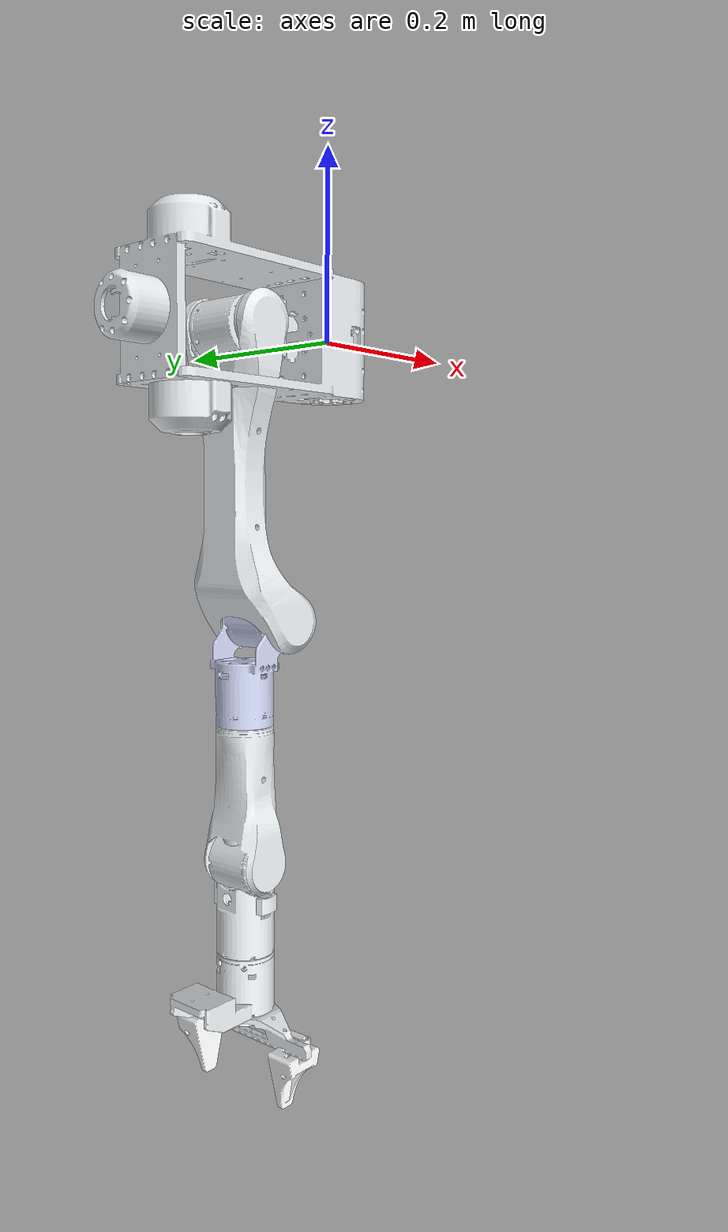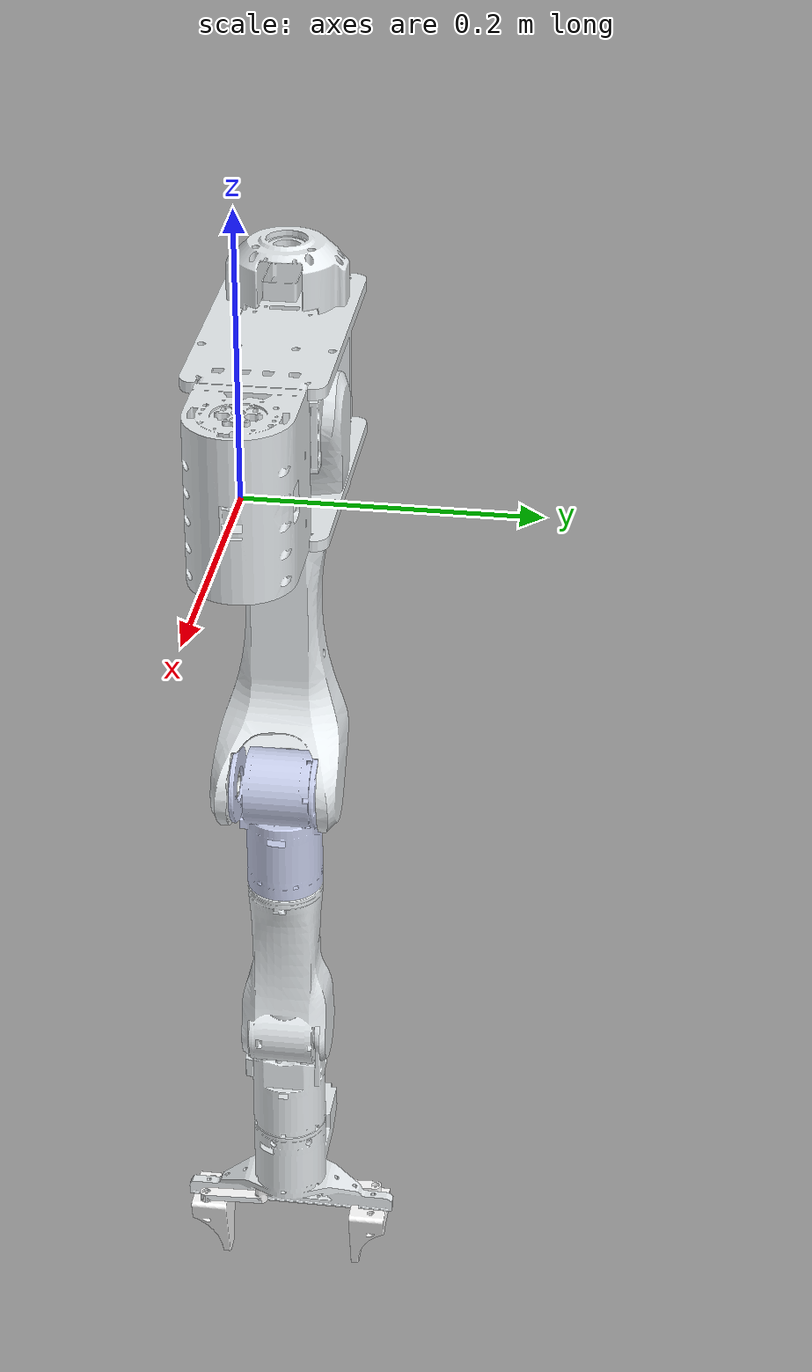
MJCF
<mujoco model="alicia_m_v1_1_vertical">
  <compiler angle="radian" meshdir="../../meshes/Alicia_M_v1_1/vertical/"/>

  <asset>
    <mesh name="base_link" content_type="model/stl" file="base_link.STL"/>
    <mesh name="Link1" content_type="model/stl" file="Link1.STL"/>
    <mesh name="Link2" content_type="model/stl" file="Link2.STL"/>
    <mesh name="Link3" content_type="model/stl" file="Link3.STL"/>
    <mesh name="Link4" content_type="model/stl" file="Link4.STL"/>
    <mesh name="Link5" content_type="model/stl" file="Link5.STL"/>
    <mesh name="Link6" content_type="model/stl" file="Link6.STL"/>
    <mesh name="grasp_base" content_type="model/stl" file="grasp_base.STL"/>
    <mesh name="Link7" content_type="model/stl" file="Link7.STL"/>
    <mesh name="Link8" content_type="model/stl" file="Link8.STL"/>
  </asset>

  <worldbody>
    <body name="robot_base" pos="0 0 0" quat="0.5 -0.5 -0.5 0.5">
      <geom type="mesh" contype="0" conaffinity="0" group="1" density="0" rgba="0.898039 0.917647 0.929412 1" mesh="base_link"/>
      <geom type="mesh" rgba="0.898039 0.917647 0.929412 1" mesh="base_link"/>
      <body name="Link1" pos="0 0 0.08325" quat="0.0 0 0 -1">
      <inertial pos="-0.00526343 -0.000784868 0.0400391" quat="0.712184 0.701961 -0.000872456 -0.00668323" mass="0.2378" diaginertia="0.000106558 9.72453e-05 8.49999e-05"/>
      <joint name="joint1" pos="0 0 0" axis="0 0 1" range="-2.7475 2.7475" actuatorfrcrange="-5 5"/>
      <geom type="mesh" contype="0" conaffinity="0" group="1" density="0" rgba="0.898039 0.917647 0.929412 1" mesh="Link1"/>
      <geom type="mesh" rgba="0.898039 0.917647 0.929412 1" mesh="Link1"/>
      <body name="Link2" pos="0 0 0.0505" quat="0.5 0.5 -0.5 -0.5">
        <inertial pos="0.14911 -0.00587857 0.00511122" quat="0.480645 0.477951 0.521358 0.518391" mass="0.57939" diaginertia="0.00253575 0.0024715 0.000376399"/>
        <joint name="joint2" pos="0 0 0" axis="0 0 1" range="-3.14 0" actuatorfrcrange="-5 5"/>
        <geom type="mesh" contype="0" conaffinity="0" group="1" density="0" rgba="0.898039 0.917647 0.929412 1" mesh="Link2"/>
        <geom type="mesh" rgba="0.898039 0.917647 0.929412 1" mesh="Link2"/>
        <body name="Link3" pos="0.281841 -0.0404241 0">
          <inertial pos="0.0473071 0.0202858 0.00423028" quat="0.702918 0.703767 0.0740463 0.0716544" mass="0.524796" diaginertia="0.000217699 0.000192124 0.0001692"/>
          <joint name="joint3" pos="0 0 0" axis="0 0 1" range="0 3.14" actuatorfrcrange="-5 5"/>
          <geom type="mesh" contype="0" conaffinity="0" group="1" density="0" rgba="0.792157 0.819608 0.933333 1" mesh="Link3"/>
          <geom type="mesh" rgba="0.792157 0.819608 0.933333 1" mesh="Link3"/>
          <body name="Link4" pos="0.096166 0.0285459 0.00365622" quat="0.5 -0.5 0.5 -0.5">
            <inertial pos="-5.18787e-05 0.00102838 0.10671" quat="0.705846 0.00192125 0.000126896 0.708363" mass="0.563217" diaginertia="0.000320932 0.000283027 0.000150649"/>
            <joint name="joint4" pos="0 0 0" axis="0 0 1" range="-1.57 1.57" actuatorfrcrange="-5 5"/>
            <geom type="mesh" contype="0" conaffinity="0" group="1" density="0" rgba="0.898039 0.917647 0.929412 1" mesh="Link4"/>
            <geom type="mesh" rgba="0.898039 0.917647 0.929412 1" mesh="Link4"/>
            <body name="Link5" pos="0 0.00365622 0.14125" quat="0.707107 0.707106 0 0">
              <inertial pos="-0.000160285 0.0618443 0.00494698" quat="0.502768 0.494687 0.502445 0.500058" mass="0.345293" diaginertia="0.000134754 0.000109623 0.00010457"/>
              <joint name="joint5" pos="0 0 0" axis="0 0 1" range="-1.57 1.57" actuatorfrcrange="-5 5"/>
              <geom type="mesh" contype="0" conaffinity="0" group="1" density="0" rgba="0.898039 0.917647 0.929412 1" mesh="Link5"/>
              <geom type="mesh" rgba="0.898039 0.917647 0.929412 1" mesh="Link5"/>
              <body name="Link6" pos="0 0.097 0.0036563" quat="0.707107 -0.707106 0 0">
                <inertial pos="-0.00845685 -0.00384323 0.029091" quat="0.395605 0.758779 -0.398655 0.329886" mass="0.482508" diaginertia="0.000639083 0.000607986 0.000164494"/>
                <joint name="joint6" pos="0 0 0" axis="0.000117752 0 -1" range="-2.791 2.791" actuatorfrcrange="-5 5"/>
                <geom type="mesh" contype="0" conaffinity="0" group="1" density="0" rgba="0.898039 0.917647 0.929412 1" mesh="Link6"/>
                <geom type="mesh" rgba="0.898039 0.917647 0.929412 1" mesh="Link6"/>
                <geom pos="0.00437159 0.00365622 0.1355" quat="1 0 0 0" type="mesh" contype="0" conaffinity="0" group="1" density="0" rgba="1 1 1 1" mesh="grasp_base"/>
                <geom pos="0.00437159 0.00365622 0.1355" quat="1 0 0 0" type="mesh" rgba="1 1 1 1" mesh="grasp_base"/>
                <body name="Link7" pos="3.82926e-05 -0.0499998 0.1355" quat="0.000280245 0.000280246 -0.707108 -0.707105">
                  <inertial pos="-5.91533e-06 -0.0424947 -0.0107088" quat="0.580095 0.404626 -0.404469 0.579805" mass="0.0243715" diaginertia="8.6106e-06 6.51544e-06 4.63222e-06"/>
                  <joint name="joint7" pos="0 0 0" axis="0 0 1" type="slide" range="-0.05 0" actuatorfrcrange="-5 5"/>
                  <geom type="mesh" contype="0" conaffinity="0" group="1" density="0" rgba="1 1 1 1" mesh="Link7"/>
                  <geom type="mesh" rgba="1 1 1 1" mesh="Link7"/>
                </body>
                <body name="Link8" pos="-3.83074e-05 0.0500002 0.1355" quat="0.50019 0.49981 0.500191 -0.499808">
                  <inertial pos="0.0424947 -5.91533e-06 -0.0107088" quat="0.000205031 0.572116 0.000111048 0.820173" mass="0.0243715" diaginertia="8.6106e-06 6.51544e-06 4.63222e-06"/>
                  <joint name="joint8" pos="0 0 0" axis="0 0 1" type="slide" range="0 0.05" actuatorfrcrange="-5 5"/>
                  <geom type="mesh" contype="0" conaffinity="0" group="1" density="0" rgba="1 1 1 1" mesh="Link8"/>
                  <geom type="mesh" rgba="1 1 1 1" mesh="Link8"/>
                </body>
              </body>
            </body>
          </body>
        </body>
      </body>
      </body>
    </body>
  </worldbody>
</mujoco>
